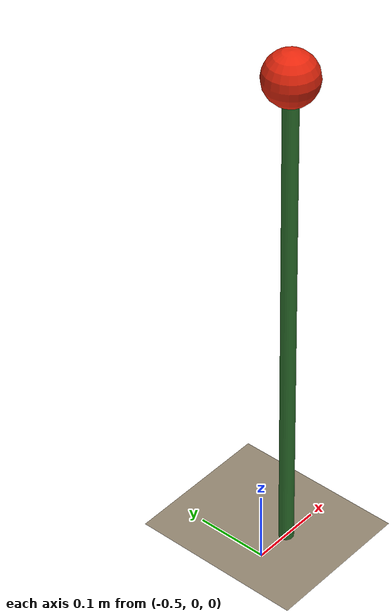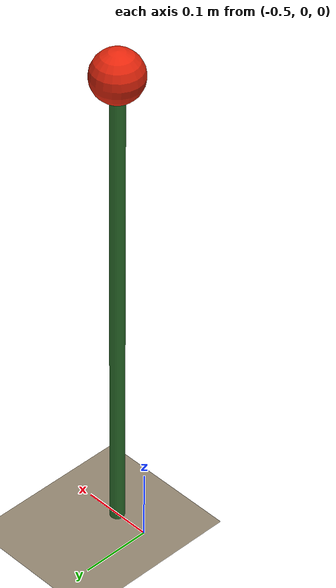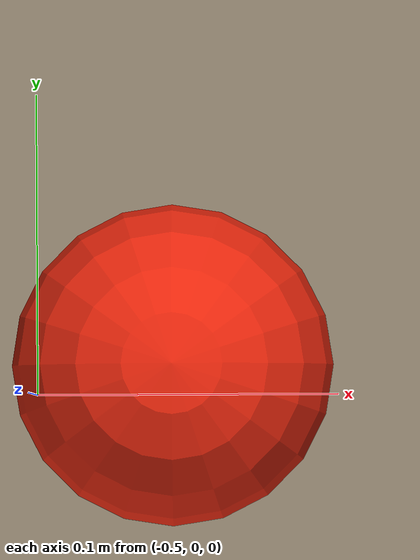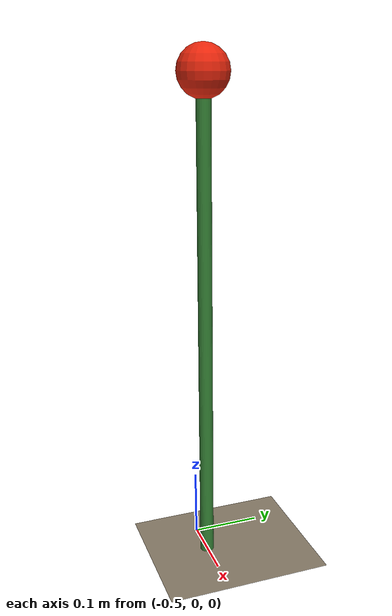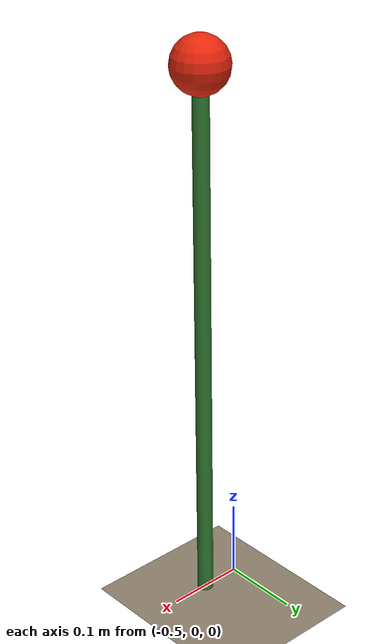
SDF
<?xml version='1.0' encoding='utf-8'?>
<sdf version="1.9">
  <world name="single_tomato_easy">
    <plugin name="gz::sim::systems::Physics" filename="gz-sim-physics-system" />
    <plugin name="gz::sim::systems::UserCommands" filename="gz-sim-user-commands-system" />
    <plugin name="gz::sim::systems::SceneBroadcaster" filename="gz-sim-scene-broadcaster-system" />
    <plugin name="gz::sim::systems::Contact" filename="gz-sim-contact-system" />

    <gravity>0 0 -9.8</gravity>
    <scene>
      <grid>true</grid>
      <ambient>0.5 0.5 0.5 1</ambient>
      <background>0.8 0.8 0.8 1</background>
      <shadows>false</shadows>
    </scene>

    <light name="sun" type="directional">
      <cast_shadows>false</cast_shadows>
      <pose>0 0 10 0 0 0</pose>
      <diffuse>0.9 0.9 0.8 1</diffuse>
      <specular>0.2 0.2 0.2 1</specular>
      <direction>-0.5 0.2 -1</direction>
    </light>

    <model name="ground_plane">
      <static>true</static>
      <link name="link">
        <collision name="collision">
          <geometry>
            <plane><normal>0 0 1</normal><size>8 8</size></plane>
          </geometry>
        </collision>
        <visual name="visual">
          <geometry>
            <plane><normal>0 0 1</normal><size>8 8</size></plane>
          </geometry>
          <material>
            <ambient>0.55 0.50 0.42 1</ambient>
            <diffuse>0.55 0.50 0.42 1</diffuse>
          </material>
        </visual>
      </link>
    </model>

    <!-- Simple support post to hold the tomato -->
    <model name="support_post">
      <static>true</static>
      <pose>-0.45 0.0 0.35 0 0 0</pose>
      <link name="link">
        <visual name="visual">
          <geometry>
            <cylinder><radius>0.01</radius><length>0.7</length></cylinder>
          </geometry>
          <material>
            <ambient>0.2 0.5 0.2 1</ambient>
            <diffuse>0.2 0.5 0.2 1</diffuse>
          </material>
        </visual>
      </link>
    </model>

    <!-- Parent model for detachable joint -->
    <model name="tomato_plant">
      <pose>-0.45 0.0 0.0 0 0 0</pose>
      <static>true</static>
      <link name="stem">
        <pose>0 0 0.65 0 0 0</pose>
        <visual name="vis">
          <geometry>
            <cylinder><radius>0.005</radius><length>0.05</length></cylinder>
          </geometry>
          <material>
            <ambient>0.15 0.4 0.15 1</ambient>
            <diffuse>0.15 0.4 0.15 1</diffuse>
          </material>
        </visual>
      </link>
      <plugin filename="gz-sim-detachable-joint-system"
              name="gz::sim::systems::DetachableJoint">
        <parent_link>stem</parent_link>
        <child_model>tomato_easy_0</child_model>
        <child_link>link</child_link>
        <detach_topic>/detach/tomato_easy_0</detach_topic>
        <attach_topic>/attach/tomato_easy_0</attach_topic>
        <output_topic>/detach_state/tomato_easy_0</output_topic>
      </plugin>
    </model>

    <model name="tomato_easy_0">
      <pose>-0.45 0.0 0.70 0 0 0</pose>
      <static>false</static>
      <link name="link">
        <inertial>
          <mass>0.1</mass>
          <inertia>
            <ixx>0.00001</ixx><iyy>0.00001</iyy><izz>0.00001</izz>
            <ixy>0</ixy><ixz>0</ixz><iyz>0</iyz>
          </inertia>
        </inertial>
        <visual name="visual">
          <geometry>
            <sphere><radius>0.035</radius></sphere>
          </geometry>
          <material>
            <ambient>0.8 0.1 0.05 1</ambient>
            <diffuse>0.9 0.15 0.05 1</diffuse>
          </material>
        </visual>
        <collision name="collision">
          <geometry>
            <sphere><radius>0.035</radius></sphere>
          </geometry>
        </collision>
      </link>
    </model>

  </world>
</sdf>
